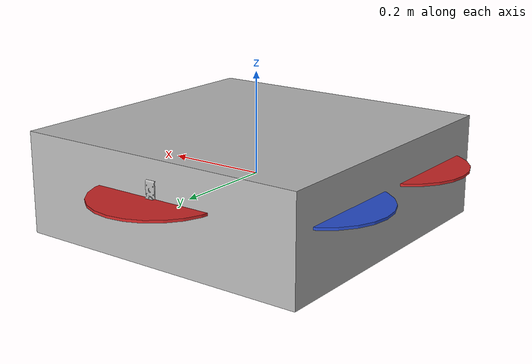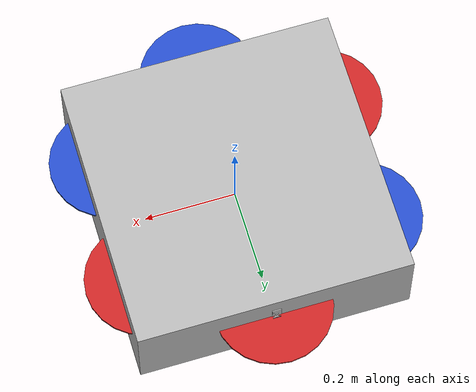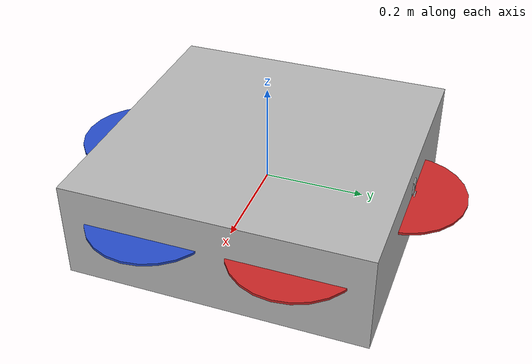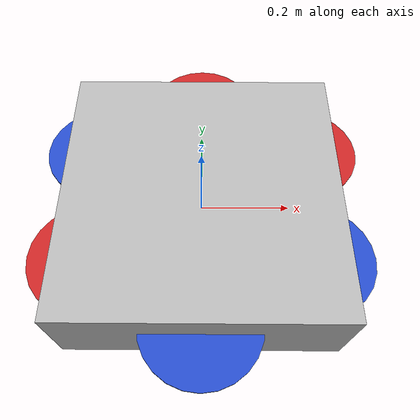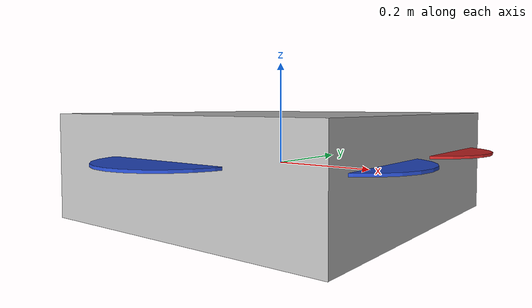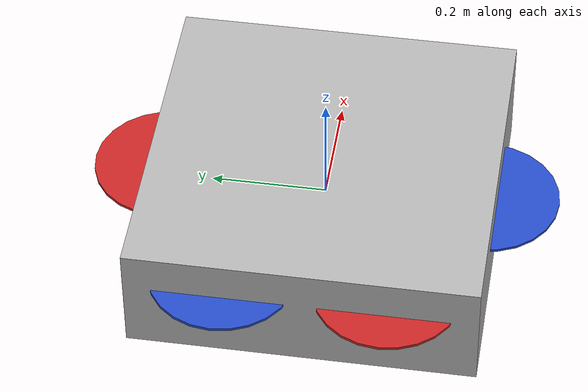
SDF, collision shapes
<!--                                  model description                                -->
<?xml version='1.0'?>
<sdf version='1.7'>
  <model name='myhexa'>
<!--                             base link model description                           -->
    <link name='base_link'>
      <inertial>
        <pose>0 0 0 0 -0 0</pose>
        <mass>2</mass>
        <inertia>
          <ixx>0.0347563</ixx>
          <ixy>0.000001</ixy>
          <ixz>0.000001</ixz>
          <iyy>0.0458929</iyy>
          <iyz>0.000001</iyz>
          <izz>0.0977</izz>
        </inertia>
      </inertial>
      <self_collide>0</self_collide>
      <enable_wind>0</enable_wind>
      <kinematic>0</kinematic>
      <pose>0 0 0 0 -0 0</pose>
      <visual name='base_link_inertia_visual'>
        <pose>0 0 0 0 -0 0</pose>
        <geometry>
          <mesh>
            <scale>1 1 1</scale>
            <uri>model://myhexa/meshes/base_link.STL</uri>
          </mesh>
        </geometry>
        <material>
          <shader type='pixel'/>
        </material>
        <transparency>0</transparency>
        <cast_shadows>1</cast_shadows>
      </visual>
      <collision name='base_link_inertia_collision'>
        <laser_retro>0</laser_retro>
        <max_contacts>10</max_contacts>
        <pose>0 0 0 0 -0 0</pose>
        <geometry>
          <box>
            <size>0.6 0.6 0.2</size>
          </box>
        </geometry>
        <surface>
          <friction>
            <ode>
              <mu>1</mu>
              <mu2>1</mu2>
              <fdir1>0 0 0</fdir1>
              <slip1>0</slip1>
              <slip2>0</slip2>
            </ode>
            <torsional>
              <coefficient>1</coefficient>
              <patch_radius>0</patch_radius>
              <surface_radius>0</surface_radius>
              <use_patch_radius>1</use_patch_radius>
              <ode>
                <slip>0</slip>
              </ode>
            </torsional>
          </friction>
          <bounce>
            <restitution_coefficient>0</restitution_coefficient>
            <threshold>1e+06</threshold>
          </bounce>
          <contact>
            <collide_without_contact>0</collide_without_contact>
            <collide_without_contact_bitmask>1</collide_without_contact_bitmask>
            <collide_bitmask>1</collide_bitmask>
            <ode>
              <soft_cfm>0</soft_cfm>
              <soft_erp>0.2</soft_erp>
              <kp>1e+13</kp>
              <kd>1</kd>
              <max_vel>0.01</max_vel>
              <min_depth>0</min_depth>
            </ode>
            <bullet>
              <split_impulse>1</split_impulse>
              <split_impulse_penetration_threshold>-0.01</split_impulse_penetration_threshold>
              <soft_cfm>0</soft_cfm>
              <soft_erp>0.2</soft_erp>
              <kp>1e+13</kp>
              <kd>1</kd>
            </bullet>
          </contact>
        </surface>
      </collision>
    </link>

<!--                              rotor1 model description                             -->
    <link name='rotor_1'>
      <pose>-0 0.28 0.026 0 -0 -0.5236</pose>
      <inertial>
        <pose>0 0 0 0 -0 0</pose>
        <mass>0.00492951</mass>
        <inertia>
          <ixx>9.61254e-07</ixx>
          <ixy>0</ixy>
          <ixz>0</ixz>
          <iyy>6.62936e-05</iyy>
          <iyz>0</iyz>
          <izz>6.71809e-05</izz>
        </inertia>
      </inertial>
      <self_collide>0</self_collide>
      <enable_wind>0</enable_wind>
      <kinematic>0</kinematic>
      <visual name='rotor_1_visual'>
        <pose>0 0 0.035 0 -0 0</pose>
        <geometry>
          <mesh>
            <scale>1 1 1</scale>
            <uri>model://myhexa/meshes/rotor_1.STL</uri>
          </mesh>
        </geometry>
        <material>
          <script>
            <name>Gazebo/Red</name>
            <uri>file://media/materials/scripts/gazebo.material</uri>
          </script>
          <shader type='pixel'/>
        </material>
        <transparency>0</transparency>
        <cast_shadows>1</cast_shadows>
      </visual>
      <collision name='rotor_1_collision'>
        <laser_retro>0</laser_retro>
        <max_contacts>10</max_contacts>
        <pose>0 0 0 0 -0 0</pose>
        <geometry>
          <cylinder>
            <radius>0.127</radius>
            <length>0.005</length>
          </cylinder>
        </geometry>
        <surface>
          <friction>
            <ode>
              <mu>1</mu>
              <mu2>1</mu2>
              <fdir1>0 0 0</fdir1>
              <slip1>0</slip1>
              <slip2>0</slip2>
            </ode>
            <torsional>
              <coefficient>1</coefficient>
              <patch_radius>0</patch_radius>
              <surface_radius>0</surface_radius>
              <use_patch_radius>1</use_patch_radius>
              <ode>
                <slip>0</slip>
              </ode>
            </torsional>
          </friction>
          <bounce>
            <restitution_coefficient>0</restitution_coefficient>
            <threshold>1e+06</threshold>
          </bounce>
          <contact>
            <collide_without_contact>0</collide_without_contact>
            <collide_without_contact_bitmask>1</collide_without_contact_bitmask>
            <collide_bitmask>1</collide_bitmask>
            <ode>
              <soft_cfm>0</soft_cfm>
              <soft_erp>0.2</soft_erp>
              <kp>1e+13</kp>
              <kd>1</kd>
              <max_vel>0.01</max_vel>
              <min_depth>0</min_depth>
            </ode>
            <bullet>
              <split_impulse>1</split_impulse>
              <split_impulse_penetration_threshold>-0.01</split_impulse_penetration_threshold>
              <soft_cfm>0</soft_cfm>
              <soft_erp>0.2</soft_erp>
              <kp>1e+13</kp>
              <kd>1</kd>
            </bullet>
          </contact>
        </surface>
      </collision>
    </link>
<!--                              rotor2 model description                             -->
    <link name='rotor_2'>
      <pose>-0 -0.28 0.026
       0 -0 -0.5236</pose>
      <inertial>
        <pose>0 0 0 0 -0 0</pose>
        <mass>0.00492951</mass>
        <inertia>
          <ixx>9.61254e-07</ixx>
          <ixy>0</ixy>
          <ixz>0</ixz>
          <iyy>6.62936e-05</iyy>
          <iyz>0</iyz>
          <izz>6.71809e-05</izz>
        </inertia>
      </inertial>
      <self_collide>0</self_collide>
      <enable_wind>0</enable_wind>
      <kinematic>0</kinematic>
      <visual name='rotor_2_visual'>
        <pose>0 0 0 0 -0 0</pose>
        <geometry>
          <mesh>
            <scale>1 1 1</scale>
            <uri>model://myhexa/meshes/rotor_2.STL</uri>
          </mesh>
        </geometry>
        <material>
          <script>
            <name>Gazebo/Blue</name>
            <uri>file://media/materials/scripts/gazebo.material</uri>
          </script>
          <shader type='pixel'/>
        </material>
        <transparency>0</transparency>
        <cast_shadows>1</cast_shadows>
      </visual>
      <collision name='rotor_2_collision'>
        <laser_retro>0</laser_retro>
        <max_contacts>10</max_contacts>
        <pose>0 0 0 0 -0 0</pose>
        <geometry>
          <cylinder>
            <radius>0.127</radius>
            <length>0.005</length>
          </cylinder>
        </geometry>
        <surface>
          <friction>
            <ode>
              <mu>1</mu>
              <mu2>1</mu2>
              <fdir1>0 0 0</fdir1>
              <slip1>0</slip1>
              <slip2>0</slip2>
            </ode>
            <torsional>
              <coefficient>1</coefficient>
              <patch_radius>0</patch_radius>
              <surface_radius>0</surface_radius>
              <use_patch_radius>1</use_patch_radius>
              <ode>
                <slip>0</slip>
              </ode>
            </torsional>
          </friction>
          <bounce>
            <restitution_coefficient>0</restitution_coefficient>
            <threshold>1e+06</threshold>
          </bounce>
          <contact>
            <collide_without_contact>0</collide_without_contact>
            <collide_without_contact_bitmask>1</collide_without_contact_bitmask>
            <collide_bitmask>1</collide_bitmask>
            <ode>
              <soft_cfm>0</soft_cfm>
              <soft_erp>0.2</soft_erp>
              <kp>1e+13</kp>
              <kd>1</kd>
              <max_vel>0.01</max_vel>
              <min_depth>0</min_depth>
            </ode>
            <bullet>
              <split_impulse>1</split_impulse>
              <split_impulse_penetration_threshold>-0.01</split_impulse_penetration_threshold>
              <soft_cfm>0</soft_cfm>
              <soft_erp>0.2</soft_erp>
              <kp>1e+13</kp>
              <kd>1</kd>
            </bullet>
          </contact>
        </surface>
      </collision>
    </link>
<!--                              rotor3 model description                             -->
    <link name='rotor_3'>
      <pose>-0.24249 -0.14 0.026 0 -0 -0.5236</pose>
      <inertial>
        <pose>0 0 0 0 -0 0</pose>
        <mass>0.00492951</mass>
        <inertia>
          <ixx>9.61254e-07</ixx>
          <ixy>0</ixy>
          <ixz>0</ixz>
          <iyy>6.62936e-05</iyy>
          <iyz>0</iyz>
          <izz>6.71809e-05</izz>
        </inertia>
      </inertial>
      <self_collide>0</self_collide>
      <enable_wind>0</enable_wind>
      <kinematic>0</kinematic>
      <visual name='rotor_3_visual'>
        <pose>0 0 0 0 -0 0</pose>
        <geometry>
          <mesh>
            <scale>1 1 1</scale>
            <uri>model://myhexa/meshes/rotor_3.STL</uri>
          </mesh>
        </geometry>
        <material>
          <script>
            <name>Gazebo/Red</name>
            <uri>file://media/materials/scripts/gazebo.material</uri>
          </script>
          <shader type='pixel'/>
        </material>
        <transparency>0</transparency>
        <cast_shadows>1</cast_shadows>
      </visual>
      <collision name='rotor_3_collision'>
        <laser_retro>0</laser_retro>
        <max_contacts>10</max_contacts>
        <pose>0 0 0 0 -0 0</pose>
        <geometry>
          <cylinder>
            <radius>0.127</radius>
            <length>0.005</length>
          </cylinder>
        </geometry>
        <surface>
          <friction>
            <ode>
              <mu>1</mu>
              <mu2>1</mu2>
              <fdir1>0 0 0</fdir1>
              <slip1>0</slip1>
              <slip2>0</slip2>
            </ode>
            <torsional>
              <coefficient>1</coefficient>
              <patch_radius>0</patch_radius>
              <surface_radius>0</surface_radius>
              <use_patch_radius>1</use_patch_radius>
              <ode>
                <slip>0</slip>
              </ode>
            </torsional>
          </friction>
          <bounce>
            <restitution_coefficient>0</restitution_coefficient>
            <threshold>1e+06</threshold>
          </bounce>
          <contact>
            <collide_without_contact>0</collide_without_contact>
            <collide_without_contact_bitmask>1</collide_without_contact_bitmask>
            <collide_bitmask>1</collide_bitmask>
            <ode>
              <soft_cfm>0</soft_cfm>
              <soft_erp>0.2</soft_erp>
              <kp>1e+13</kp>
              <kd>1</kd>
              <max_vel>0.01</max_vel>
              <min_depth>0</min_depth>
            </ode>
            <bullet>
              <split_impulse>1</split_impulse>
              <split_impulse_penetration_threshold>-0.01</split_impulse_penetration_threshold>
              <soft_cfm>0</soft_cfm>
              <soft_erp>0.2</soft_erp>
              <kp>1e+13</kp>
              <kd>1</kd>
            </bullet>
          </contact>
        </surface>
      </collision>
    </link>
<!--                              rotor4 model description                           -->
    <link name='rotor_4'>
      <pose>0.24249 0.14 0.026 0 -0 -0.5236</pose>
      <inertial>
        <pose>0 0 0 0 -0 0</pose>
        <mass>0.00492951</mass>
        <inertia>
          <ixx>9.61254e-07</ixx>
          <ixy>0</ixy>
          <ixz>0</ixz>
          <iyy>6.62936e-05</iyy>
          <iyz>0</iyz>
          <izz>6.71809e-05</izz>
        </inertia>
      </inertial>
      <self_collide>0</self_collide>
      <enable_wind>0</enable_wind>
      <kinematic>0</kinematic>
      <visual name='rotor_4_visual'>
        <pose>0 0 0 0 -0 0</pose>
        <geometry>
          <mesh>
            <scale>1 1 1</scale>
            <uri>model://myhexa/meshes/rotor_4.STL</uri>
          </mesh>
        </geometry>
        <material>
          <script>
            <name>Gazebo/Red</name>
            <uri>file://media/materials/scripts/gazebo.material</uri>
          </script>
          <shader type='pixel'/>
        </material>
        <transparency>0</transparency>
        <cast_shadows>1</cast_shadows>
      </visual>
      <collision name='rotor_4_collision'>
        <laser_retro>0</laser_retro>
        <max_contacts>10</max_contacts>
        <pose>0 0 0 0 -0 0</pose>
        <geometry>
          <cylinder>
            <radius>0.127</radius>
            <length>0.005</length>
          </cylinder>
        </geometry>
        <surface>
          <friction>
            <ode>
              <mu>1</mu>
              <mu2>1</mu2>
              <fdir1>0 0 0</fdir1>
              <slip1>0</slip1>
              <slip2>0</slip2>
            </ode>
            <torsional>
              <coefficient>1</coefficient>
              <patch_radius>0</patch_radius>
              <surface_radius>0</surface_radius>
              <use_patch_radius>1</use_patch_radius>
              <ode>
                <slip>0</slip>
              </ode>
            </torsional>
          </friction>
          <bounce>
            <restitution_coefficient>0</restitution_coefficient>
            <threshold>1e+06</threshold>
          </bounce>
          <contact>
            <collide_without_contact>0</collide_without_contact>
            <collide_without_contact_bitmask>1</collide_without_contact_bitmask>
            <collide_bitmask>1</collide_bitmask>
            <ode>
              <soft_cfm>0</soft_cfm>
              <soft_erp>0.2</soft_erp>
              <kp>1e+13</kp>
              <kd>1</kd>
              <max_vel>0.01</max_vel>
              <min_depth>0</min_depth>
            </ode>
            <bullet>
              <split_impulse>1</split_impulse>
              <split_impulse_penetration_threshold>-0.01</split_impulse_penetration_threshold>
              <soft_cfm>0</soft_cfm>
              <soft_erp>0.2</soft_erp>
              <kp>1e+13</kp>
              <kd>1</kd>
            </bullet>
          </contact>
        </surface>
      </collision>
    </link>
<!--                              rotor5 model description                             -->
    <link name='rotor_5'>
      <pose>-0.24249 0.14 0.026 0 -0 -0.5236</pose>
      <inertial>
        <pose>0 0 0 0 -0 0</pose>
        <mass>0.00492951</mass>
        <inertia>
          <ixx>9.61254e-07</ixx>
          <ixy>0</ixy>
          <ixz>0</ixz>
          <iyy>6.62936e-05</iyy>
          <iyz>0</iyz>
          <izz>6.71809e-05</izz>
        </inertia>
      </inertial>
      <self_collide>0</self_collide>
      <enable_wind>0</enable_wind>
      <kinematic>0</kinematic>
      <visual name='rotor_5_visual'>
        <pose>0 0 0 0 -0 0</pose>
        <geometry>
          <mesh>
            <scale>1 1 1</scale>
            <uri>model://myhexa/meshes/rotor_5.STL</uri>
          </mesh>
        </geometry>
        <material>
          <script>
            <name>Gazebo/Blue</name>
            <uri>file://media/materials/scripts/gazebo.material</uri>
          </script>
          <shader type='pixel'/>
        </material>
        <transparency>0</transparency>
        <cast_shadows>1</cast_shadows>
      </visual>
      <collision name='rotor_5_collision'>
        <laser_retro>0</laser_retro>
        <max_contacts>10</max_contacts>
        <pose>0 0 0 0 -0 0</pose>
        <geometry>
          <cylinder>
            <radius>0.127</radius>
            <length>0.005</length>
          </cylinder>
        </geometry>
        <surface>
          <friction>
            <ode>
              <mu>1</mu>
              <mu2>1</mu2>
              <fdir1>0 0 0</fdir1>
              <slip1>0</slip1>
              <slip2>0</slip2>
            </ode>
            <torsional>
              <coefficient>1</coefficient>
              <patch_radius>0</patch_radius>
              <surface_radius>0</surface_radius>
              <use_patch_radius>1</use_patch_radius>
              <ode>
                <slip>0</slip>
              </ode>
            </torsional>
          </friction>
          <bounce>
            <restitution_coefficient>0</restitution_coefficient>
            <threshold>1e+06</threshold>
          </bounce>
          <contact>
            <collide_without_contact>0</collide_without_contact>
            <collide_without_contact_bitmask>1</collide_without_contact_bitmask>
            <collide_bitmask>1</collide_bitmask>
            <ode>
              <soft_cfm>0</soft_cfm>
              <soft_erp>0.2</soft_erp>
              <kp>1e+13</kp>
              <kd>1</kd>
              <max_vel>0.01</max_vel>
              <min_depth>0</min_depth>
            </ode>
            <bullet>
              <split_impulse>1</split_impulse>
              <split_impulse_penetration_threshold>-0.01</split_impulse_penetration_threshold>
              <soft_cfm>0</soft_cfm>
              <soft_erp>0.2</soft_erp>
              <kp>1e+13</kp>
              <kd>1</kd>
            </bullet>
          </contact>
        </surface>
      </collision>
    </link>
<!--                              rotor6 model description                             -->
    <link name='rotor_6'>
      <pose>0.24249 -0.14 0.026 0 -0 -0.5236</pose>
      <inertial>
        <pose>0 0 0 0 -0 0</pose>
        <mass>0.00492951</mass>
        <inertia>
          <ixx>9.61254e-07</ixx>
          <ixy>0</ixy>
          <ixz>0</ixz>
          <iyy>6.62936e-05</iyy>
          <iyz>0</iyz>
          <izz>6.71809e-05</izz>
        </inertia>
      </inertial>
      <self_collide>0</self_collide>
      <enable_wind>0</enable_wind>
      <kinematic>0</kinematic>
      <visual name='rotor_6_visual'>
        <pose>0 0 0 0 -0 0</pose>
        <geometry>
          <mesh>
            <scale>1 1 1</scale>
            <uri>model://myhexa/meshes/rotor_6.STL</uri>
          </mesh>
        </geometry>
        <material>
          <script>
            <name>Gazebo/Blue</name>
            <uri>file://media/materials/scripts/gazebo.material</uri>
          </script>
          <shader type='pixel'/>
        </material>
        <transparency>0</transparency>
        <cast_shadows>1</cast_shadows>
      </visual>
      <collision name='rotor_6_collision'>
        <laser_retro>0</laser_retro>
        <max_contacts>10</max_contacts>
        <pose>0 0 0 0 -0 0</pose>
        <geometry>
          <cylinder>
            <radius>0.127</radius>
            <length>0.005</length>
          </cylinder>
        </geometry>
        <surface>
          <friction>
            <ode>
              <mu>1</mu>
              <mu2>1</mu2>
              <fdir1>0 0 0</fdir1>
              <slip1>0</slip1>
              <slip2>0</slip2>
            </ode>
            <torsional>
              <coefficient>1</coefficient>
              <patch_radius>0</patch_radius>
              <surface_radius>0</surface_radius>
              <use_patch_radius>1</use_patch_radius>
              <ode>
                <slip>0</slip>
              </ode>
            </torsional>
          </friction>
          <bounce>
            <restitution_coefficient>0</restitution_coefficient>
            <threshold>1e+06</threshold>
          </bounce>
          <contact>
            <collide_without_contact>0</collide_without_contact>
            <collide_without_contact_bitmask>1</collide_without_contact_bitmask>
            <collide_bitmask>1</collide_bitmask>
            <ode>
              <soft_cfm>0</soft_cfm>
              <soft_erp>0.2</soft_erp>
              <kp>1e+13</kp>
              <kd>1</kd>
              <max_vel>0.01</max_vel>
              <min_depth>0</min_depth>
            </ode>
            <bullet>
              <split_impulse>1</split_impulse>
              <split_impulse_penetration_threshold>-0.01</split_impulse_penetration_threshold>
              <soft_cfm>0</soft_cfm>
              <soft_erp>0.2</soft_erp>
              <kp>1e+13</kp>
              <kd>1</kd>
            </bullet>
          </contact>
        </surface>
      </collision>
    </link>
<!--                               rotor1 joint                                        -->
<!--       Tips:  joint 1 parent link is servo_link , others' are base_link            -->
    <joint name='rotor_1_joint' type='revolute'>
      <parent>servo_link</parent>
      <child>rotor_1</child>
      <pose>-0 0 0 0 -0 0</pose>
      <axis>
        <xyz>0 0 1</xyz>
        <limit>
          <lower>-1e+16</lower>
          <upper>1e+16</upper>
          <effort>-1</effort>
          <velocity>-10</velocity>
        </limit>
        <dynamics>
          <spring_reference>0</spring_reference>
          <spring_stiffness>0</spring_stiffness>
          <damping>0</damping>
          <friction>0</friction>
        </dynamics>
      </axis>
      <physics>
        <ode>
          <limit>
            <cfm>0</cfm>
            <erp>0.2</erp>
          </limit>
          <suspension>
            <cfm>0</cfm>
            <erp>0.2</erp>
          </suspension>
        </ode>
      </physics>
    </joint>
<!--                                    joint 2                                        -->
    <joint name='rotor_2_joint' type='revolute'>
      <parent>base_link</parent>
      <child>rotor_2</child>
      <pose>0 0 0 0 -0 0</pose>
      <axis>
        <xyz>0 0 1</xyz>
        <limit>
          <lower>-1e+16</lower>
          <upper>1e+16</upper>
          <effort>-1</effort>
          <velocity>-10</velocity>
        </limit>
        <dynamics>
          <spring_reference>0</spring_reference>
          <spring_stiffness>0</spring_stiffness>
          <damping>0</damping>
          <friction>0</friction>
        </dynamics>
      </axis>
      <physics>
        <ode>
          <limit>
            <cfm>0</cfm>
            <erp>0.2</erp>
          </limit>
          <suspension>
            <cfm>0</cfm>
            <erp>0.2</erp>
          </suspension>
        </ode>
      </physics>
    </joint>
<!--                                    joint 3                                        -->
    <joint name='rotor_3_joint' type='revolute'>
      <parent>base_link</parent>
      <child>rotor_3</child>
      <pose>0 0 0 0 -0 0</pose>
      <axis>
        <xyz>0 0 1</xyz>
        <limit>
          <lower>-1e+16</lower>
          <upper>1e+16</upper>
          <effort>-1</effort>
          <velocity>-10</velocity>
        </limit>
        <dynamics>
          <spring_reference>0</spring_reference>
          <spring_stiffness>0</spring_stiffness>
          <damping>0</damping>
          <friction>0</friction>
        </dynamics>
      </axis>
      <physics>
        <ode>
          <limit>
            <cfm>0</cfm>
            <erp>0.2</erp>
          </limit>
          <suspension>
            <cfm>0</cfm>
            <erp>0.2</erp>
          </suspension>
        </ode>
      </physics>
    </joint>
<!--                                    joint 4                                        -->
    <joint name='rotor_4_joint' type='revolute'>
      <parent>base_link</parent>
      <child>rotor_4</child>
      <pose>-0 0 0 0 -0 0</pose>
      <axis>
        <xyz>0 0 1</xyz>
        <limit>
          <lower>-1e+16</lower>
          <upper>1e+16</upper>
          <effort>-1</effort>
          <velocity>-10</velocity>
        </limit>
        <dynamics>
          <spring_reference>0</spring_reference>
          <spring_stiffness>0</spring_stiffness>
          <damping>0</damping>
          <friction>0</friction>
        </dynamics>
      </axis>
      <physics>
        <ode>
          <limit>
            <cfm>0</cfm>
            <erp>0.2</erp>
          </limit>
          <suspension>
            <cfm>0</cfm>
            <erp>0.2</erp>
          </suspension>
        </ode>
      </physics>
    </joint>
<!--                                    joint 5                                        -->
    <joint name='rotor_5_joint' type='revolute'>
      <parent>base_link</parent>
      <child>rotor_5</child>
      <pose>0 0 0 0 -0 0</pose>
      <axis>
        <xyz>0 0 1</xyz>
        <limit>
          <lower>-1e+16</lower>
          <upper>1e+16</upper>
          <effort>-1</effort>
          <velocity>-10</velocity>
        </limit>
        <dynamics>
          <spring_reference>0</spring_reference>
          <spring_stiffness>0</spring_stiffness>
          <damping>0</damping>
          <friction>0</friction>
        </dynamics>
      </axis>
      <physics>
        <ode>
          <limit>
            <cfm>0</cfm>
            <erp>0.2</erp>
          </limit>
          <suspension>
            <cfm>0</cfm>
            <erp>0.2</erp>
          </suspension>
        </ode>
      </physics>
    </joint>
<!--                                    joint 6                                        -->
    <joint name='rotor_6_joint' type='revolute'>
      <parent>base_link</parent>
      <child>rotor_6</child>
      <pose>0 -0 0 0 -0 0</pose>
      <axis>
        <xyz>0 0 1</xyz>
        <limit>
          <lower>-1e+16</lower>
          <upper>1e+16</upper>
          <effort>-1</effort>
          <velocity>-10</velocity>
        </limit>
        <dynamics>
          <spring_reference>0</spring_reference>
          <spring_stiffness>0</spring_stiffness>
          <damping>0</damping>
          <friction>0</friction>
        </dynamics>
      </axis>
      <physics>
        <ode>
          <limit>
            <cfm>0</cfm>
            <erp>0.2</erp>
          </limit>
          <suspension>
            <cfm>0</cfm>
            <erp>0.2</erp>
          </suspension>
        </ode>
      </physics>
    </joint>

<!--                                       imu                                         -->
    <link name='imu_link'>
      <pose>0 0 0 0 0 3.1415927</pose>
      <inertial>
        <pose>0 0 0 0 0 0</pose>
        <mass>0.015</mass>
        <inertia>
          <ixx>1e-05</ixx>
          <ixy>0</ixy>
          <ixz>0</ixz>
          <iyy>1e-05</iyy>
          <iyz>0</iyz>
          <izz>1e-05</izz>
        </inertia>
      </inertial>
      <sensor name="imu_sensor" type="imu">
        <pose>0 0 0 3.141593 0 0</pose>
        <always_on>1</always_on>
        <update_rate>1000.0</update_rate>
      </sensor>
    </link>
    <joint name='imu_joint' type='revolute'>
      <child>imu_link</child>
      <parent>base_link</parent>
      <axis>
        <xyz>1 0 0</xyz>
        <limit>
          <lower>0</lower>
          <upper>0</upper>
          <effort>0</effort>
          <velocity>-10</velocity>
        </limit>
        <dynamics>
          <damping>1.0</damping>
        </dynamics>
        <use_parent_model_frame>1</use_parent_model_frame>
      </axis>
    </joint>
<!--                                     servo                                         -->
<!--                        Cmd : servo set (num) (pwm)                                -->
<!--                     rotor_3 : 990      rotor_5 : 1010                             -->
    <link name='servo_link'>
    <pose>-0 0.2809 0.024 1.5708 -0 0</pose>
      <inertial>
        <pose>-0 0 0 0 -0 0</pose>
        <mass>0.002457</mass>
        <inertia>
          <ixx>0.0347563</ixx>
          <iyz>0.000001</iyz>
          <iyz>0.000001</iyz>
          <iyy>0.0458929</iyy>
          <iyz>0.000001</iyz>
          <izz>0.1</izz>
        </inertia>
      </inertial>
      <self_collide>0</self_collide>
      <enable_wind>0</enable_wind>
      <kinematic>0</kinematic>
      <visual name='servo_link_visual'>
        <pose>0 0 0 0 -0 0</pose>
        <geometry>
          <mesh>
            <scale>1 1 1</scale>
            <uri>model://myhexa/meshes/servo_link.STL</uri>
          </mesh>
        </geometry>
        <material>
          <shader type='pixel'/>
          <emissive>0 0 0 1</emissive>
        </material>
        <transparency>0</transparency>
        <cast_shadows>1</cast_shadows>
      </visual>
      <collision name='servo_link_collision'>
        <laser_retro>0</laser_retro>
        <max_contacts>10</max_contacts>
        <pose>0 0 0 0 -0 0</pose>
        <geometry>
          <mesh>
            <uri>model://myhexa/meshes/servo_link.STL</uri>
            <scale>1 1 1</scale>
          </mesh>
        </geometry>
        <surface>
          <friction>
            <ode>
              <mu>1</mu>
              <mu2>1</mu2>
              <fdir1>0 0 0</fdir1>
              <slip1>0</slip1>
              <slip2>0</slip2>
            </ode>
            <torsional>
              <coefficient>1</coefficient>
              <patch_radius>0</patch_radius>
              <surface_radius>0</surface_radius>
              <use_patch_radius>1</use_patch_radius>
              <ode>
                <slip>0</slip>
              </ode>
            </torsional>
          </friction>
          <bounce>
            <restitution_coefficient>0</restitution_coefficient>
            <threshold>1e+06</threshold>
          </bounce>
          <contact>
            <collide_without_contact>0</collide_without_contact>
            <collide_without_contact_bitmask>1</collide_without_contact_bitmask>
            <collide_bitmask>1</collide_bitmask>
            <ode>
              <soft_cfm>0</soft_cfm>
              <soft_erp>0.2</soft_erp>
              <kp>1e+13</kp>
              <kd>1</kd>
              <max_vel>0.01</max_vel>
              <min_depth>0</min_depth>
            </ode>
            <bullet>
              <split_impulse>1</split_impulse>
              <split_impulse_penetration_threshold>-0.01</split_impulse_penetration_threshold>
              <soft_cfm>0</soft_cfm>
              <soft_erp>0.2</soft_erp>
              <kp>1e+13</kp>
              <kd>1</kd>
            </bullet>
          </contact>
        </surface>
      </collision>
    </link>
    <joint name='servo_joint' type='revolute'>
      <parent>base_link</parent>
      <child>servo_link</child>
      <pose>-0 -0 0 0 -0 0</pose>
      <axis>
        <xyz>0 0 1 </xyz>
        <limit>
          <lower>-1e+16</lower>
          <upper>1e+16</upper>
          <effort>-10</effort>
          <velocity>0</velocity>
        </limit>
        <dynamics>
          <spring_reference>0</spring_reference>
          <spring_stiffness>0</spring_stiffness>
          <damping>0</damping>
          <friction>0</friction>
        </dynamics>
      </axis>
      <physics>
        <ode>
          <limit>
            <cfm>0</cfm>
            <erp>0</erp>
          </limit>
          <suspension>
            <cfm>0</cfm>
            <erp>0</erp>
          </suspension>
        </ode>
      </physics>
    </joint>

<!--                                    plugins                                        -->
<!--                set the parameter of the rotors with the gazebo library            -->
<!--  the value is only set for ppnnpn ,or you can switch the forward value of 4 and 6 -->
    <plugin name="rotor_1_blade_1" filename="libLiftDragPlugin.so">
      <a0>0.3</a0>
      <alpha_stall>1.4</alpha_stall>
      <cla>4.500</cla>
      <cda>0.10</cda>
      <cma>0.00</cma>
      <cla_stall>-0.025</cla_stall>
      <cda_stall>0.0</cda_stall>
      <cma_stall>0.0</cma_stall>
      <area>0.002</area>
      <air_density>1.2041</air_density>
      <cp>0.0 0.084 0</cp>
      <forward>1 0 0</forward>
      <upward>0 0 1</upward>
      <link_name>rotor_1</link_name>
    </plugin>
    <plugin name="rotor_1_blade_2" filename="libLiftDragPlugin.so">
      <a0>0.3</a0>
      <alpha_stall>1.4</alpha_stall>
      <cla>4.500</cla>
      <cda>0.10</cda>
      <cma>0.00</cma>
      <cla_stall>-0.025</cla_stall>
      <cda_stall>0.0</cda_stall>
      <cma_stall>0.0</cma_stall>
      <area>0.002</area>
      <air_density>1.2041</air_density>
      <cp>0.0 -0.084 0</cp>
      <forward>-1 0 0</forward>
      <upward>0 0 1</upward>
      <link_name>rotor_1</link_name>
    </plugin>

    <plugin name="rotor_2_blade_1" filename="libLiftDragPlugin.so">
      <a0>0.3</a0>
      <alpha_stall>1.4</alpha_stall>
      <cla>4.500</cla>
      <cda>0.10</cda>
      <cma>0.00</cma>
      <cla_stall>-0.025</cla_stall>
      <cda_stall>0.0</cda_stall>
      <cma_stall>0.0</cma_stall>
      <area>0.002</area>
      <air_density>1.2041</air_density>
      <cp>0.0 0.084 0</cp>
      <forward>-1 0 0</forward>
      <upward>0 0 1</upward>
      <link_name>rotor_2</link_name>
    </plugin>

    <plugin name="rotor_2_blade_2" filename="libLiftDragPlugin.so">
      <a0>0.3</a0>
      <alpha_stall>1.4</alpha_stall>
      <cla>4.500</cla>
      <cda>0.10</cda>
      <cma>0.00</cma>
      <cla_stall>-0.025</cla_stall>
      <cda_stall>0.0</cda_stall>
      <cma_stall>0.0</cma_stall>
      <area>0.002</area>
      <air_density>1.2041</air_density>
      <cp>0.0 -0.084 0</cp>
      <forward>1 0 0</forward>
      <upward>0 0 1</upward>
      <link_name>rotor_2</link_name>
    </plugin>

    <plugin name="rotor_3_blade_1" filename="libLiftDragPlugin.so">
      <a0>0.3</a0>
      <alpha_stall>1.4</alpha_stall>
      <cla>4.500</cla>
      <cda>0.10</cda>
      <cma>0.00</cma>
      <cla_stall>-0.025</cla_stall>
      <cda_stall>0.0</cda_stall>
      <cma_stall>0.0</cma_stall>
      <area>0.002</area>
      <air_density>1.2041</air_density>
      <cp>0.0 0.084 0</cp>
      <forward>1 0 0</forward>
      <upward>0 0 1</upward>
      <link_name>rotor_3</link_name>
    </plugin>
    <plugin name="rotor_3_blade_2" filename="libLiftDragPlugin.so">
      <a0>0.3</a0>
      <alpha_stall>1.4</alpha_stall>
      <cla>4.500</cla>
      <cda>0.10</cda>
      <cma>0.00</cma>
      <cla_stall>-0.025</cla_stall>
      <cda_stall>0.0</cda_stall>
      <cma_stall>0.0</cma_stall>
      <area>0.002</area>
      <air_density>1.2041</air_density>
      <cp>0.0 -0.084 0</cp>
      <forward>-1 0 0</forward>
      <upward>0 0 1</upward>
      <link_name>rotor_3</link_name>
    </plugin>

    <plugin name="rotor_4_blade_1" filename="libLiftDragPlugin.so">
      <a0>0.3</a0>
      <alpha_stall>1.4</alpha_stall>
      <cla>4.500</cla>
      <cda>0.10</cda>
      <cma>0.00</cma>
      <cla_stall>-0.025</cla_stall>
      <cda_stall>0.0</cda_stall>
      <cma_stall>0.0</cma_stall>
      <area>0.002</area>
      <air_density>1.2041</air_density>
      <cp>0.0 0.084 0</cp>
      <forward>1 0 0</forward><!--you need change it to (-1 0 0) when used pnpnpn-->
      <upward>0 0 1</upward>
      <link_name>rotor_4</link_name>
    </plugin>
    <plugin name="rotor_4_blade_2" filename="libLiftDragPlugin.so">
      <a0>0.3</a0>
      <alpha_stall>1.4</alpha_stall>
      <cla>4.500</cla>
      <cda>0.10</cda>
      <cma>0.00</cma>
      <cla_stall>-0.025</cla_stall>
      <cda_stall>0.0</cda_stall>
      <cma_stall>0.0</cma_stall>
      <area>0.002</area>
      <air_density>1.2041</air_density>
      <cp>0.0 -0.084 0</cp>
      <forward>-1 0 0</forward><!--you need change it to (1 0 0) when used pnpnpn-->
      <upward>0 0 1</upward>
      <link_name>rotor_4</link_name>
    </plugin>

    <plugin name="rotor_5_blade_1" filename="libLiftDragPlugin.so">
      <a0>0.3</a0>
      <alpha_stall>1.4</alpha_stall>
      <cla>4.500</cla>
      <cda>0.10</cda>
      <cma>0.00</cma>
      <cla_stall>-0.025</cla_stall>
      <cda_stall>0.0</cda_stall>
      <cma_stall>0.0</cma_stall>
      <area>0.002</area>
      <air_density>1.2041</air_density>
      <cp>0.0 0.084 0</cp>
      <forward>-1 0 0</forward>
      <upward>0 0 1</upward>
      <link_name>rotor_5</link_name>
    </plugin>
    <plugin name="rotor_5_blade_2" filename="libLiftDragPlugin.so">
      <a0>0.3</a0>
      <alpha_stall>1.4</alpha_stall>
      <cla>4.500</cla>
      <cda>0.10</cda>
      <cma>0.00</cma>
      <cla_stall>-0.025</cla_stall>
      <cda_stall>0.0</cda_stall>
      <cma_stall>0.0</cma_stall>
      <area>0.002</area>
      <air_density>1.2041</air_density>
      <cp>0.0 -0.084 0</cp>
      <forward>1 0 0</forward>
      <upward>0 0 1</upward>
      <link_name>rotor_5</link_name>
    </plugin>

    <plugin name="rotor_6_blade_1" filename="libLiftDragPlugin.so">
      <a0>0.3</a0>
      <alpha_stall>1.4</alpha_stall>
      <cla>4.500</cla>
      <cda>0.10</cda>
      <cma>0.00</cma>
      <cla_stall>-0.025</cla_stall>
      <cda_stall>0.0</cda_stall>
      <cma_stall>0.0</cma_stall>
      <area>0.002</area>
      <air_density>1.2041</air_density>
      <cp>0.0 0.084 0</cp>
      <forward>-1 0 0</forward><!--you need change it to (1 0 0) when used pnpnpn-->
      <upward>0 0 1</upward>
      <link_name>rotor_6</link_name>
    </plugin>
    <plugin name="rotor_6_blade_2" filename="libLiftDragPlugin.so">
      <a0>0.3</a0>
      <alpha_stall>1.4</alpha_stall>
      <cla>4.500</cla>
      <cda>0.10</cda>
      <cma>0.00</cma>
      <cla_stall>-0.025</cla_stall>
      <cda_stall>0.0</cda_stall>
      <cma_stall>0.0</cma_stall>
      <area>0.002</area>
      <air_density>1.2041</air_density>
      <cp>0.0 -0.084 0</cp>
      <forward>1 0 0</forward><!--you need change it to (1 0 0) when used pnpnpn-->
      <upward>0 0 1</upward>
      <link_name>rotor_6</link_name>
    </plugin>

<!--                           set the apm output channel                              -->
    <plugin name="ArduCopter_Plugin" filename="libArduPilotPlugin.so">
      <fdm_addr>127.0.0.1</fdm_addr>
      <fdm_port_in>9002</fdm_port_in>
      <fdm_port_out>9003</fdm_port_out>
      <!--
          Require by APM :
          Only change model and gazebo from XYZ to XY-Z coordinates
      -->
      <modelXYZToAirplaneXForwardZDown>0 0 0 3.141593 0 3.141593</modelXYZToAirplaneXForwardZDown>
      <gazeboXYZToNED>0 0 0 3.141593 0 3.141593</gazeboXYZToNED>
      <imuName>myhexa::imu_link::imu_sensor</imuName>
      <connectionTimeoutMaxCount>5</connectionTimeoutMaxCount>
      <!--
          incoming control command [0, 1]
          so offset it by 0 to get [0, 1]
          and divide max target by 1.
          offset = 0
          multiplier = 838 max rpm / 1 = 838
        -->
      <control channel="0">
        <type>VELOCITY</type>
        <offset>0</offset>
        <p_gain>0.20</p_gain>
        <i_gain>0</i_gain>
        <d_gain>0</d_gain>
        <i_max>0</i_max>
        <i_min>0</i_min>
        <cmd_max>2.5</cmd_max>
        <cmd_min>-2.5</cmd_min>
        <jointName>rotor_1_joint</jointName>
        <multiplier>-1200</multiplier>
        <controlVelocitySlowdownSim>1</controlVelocitySlowdownSim>
      </control>
      <control channel="1">
        <type>VELOCITY</type>
        <offset>0</offset>
        <p_gain>0.20</p_gain>
        <i_gain>0</i_gain>
        <d_gain>0</d_gain>
        <i_max>0</i_max>
        <i_min>0</i_min>
        <cmd_max>2.5</cmd_max>
        <cmd_min>-2.5</cmd_min>
        <jointName>rotor_2_joint</jointName>
        <multiplier>1200</multiplier>
        <controlVelocitySlowdownSim>1</controlVelocitySlowdownSim>
      </control>
      <control channel="2">
        <type>VELOCITY</type>
        <offset>0</offset>
        <p_gain>0.20</p_gain>
        <i_gain>0</i_gain>
        <d_gain>0</d_gain>
        <i_max>0</i_max>
        <i_min>0</i_min>
        <cmd_max>2.5</cmd_max>
        <cmd_min>-2.5</cmd_min>
        <jointName>rotor_3_joint</jointName>
        <multiplier>-1200</multiplier>
        <controlVelocitySlowdownSim>1</controlVelocitySlowdownSim>
      </control>
      <control channel="3">
        <type>VELOCITY</type>
        <offset>0</offset>
        <p_gain>0.20</p_gain>
        <i_gain>0</i_gain>
        <d_gain>0</d_gain>
        <i_max>0</i_max>
        <i_min>0</i_min>
        <cmd_max>2.5</cmd_max>
        <cmd_min>-2.5</cmd_min>
        <jointName>rotor_4_joint</jointName>
        <multiplier>-1200</multiplier>
        <controlVelocitySlowdownSim>1</controlVelocitySlowdownSim>
      </control>
      <control channel="4">
        <type>VELOCITY</type>
        <offset>0</offset>
        <p_gain>0.20</p_gain>
        <i_gain>0</i_gain>
        <d_gain>0</d_gain>
        <i_max>0</i_max>
        <i_min>0</i_min>
        <cmd_max>2.5</cmd_max>
        <cmd_min>-2.5</cmd_min>
        <jointName>rotor_5_joint</jointName>
        <multiplier>1200</multiplier>
        <controlVelocitySlowdownSim>1</controlVelocitySlowdownSim>
      </control>
      <control channel="5">
        <type>VELOCITY</type>
        <offset>0</offset>
        <p_gain>0.20</p_gain>
        <i_gain>0</i_gain>
        <d_gain>0</d_gain>
        <i_max>0</i_max>
        <i_min>0</i_min>
        <cmd_max>2.5</cmd_max>
        <cmd_min>-2.5</cmd_min>
        <jointName>rotor_6_joint</jointName>
        <multiplier>1200</multiplier>
        <controlVelocitySlowdownSim>1</controlVelocitySlowdownSim>
      </control>
      <control channel="6">
        <offset>0</offset>
        <type>POSITION</type>
        <p_gain>1000</p_gain>
        <i_gain>0</i_gain>
        <d_gain>0</d_gain>
        <jointName>servo_joint</jointName>
        <multiplier>-1</multiplier>
        <controlVelocitySlowdownSim>1</controlVelocitySlowdownSim>
      </control>
      </plugin>
  <static>0</static>
  </model>
</sdf>
<!--                                      End of the model                                 -->
